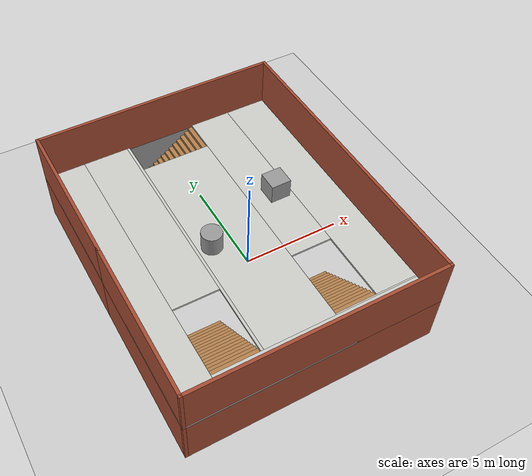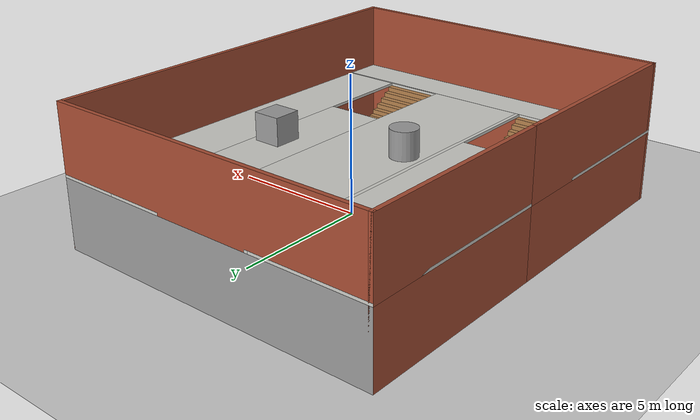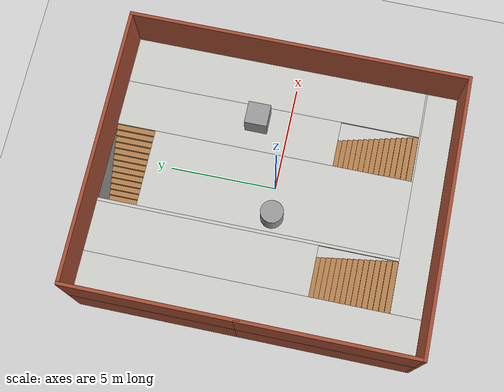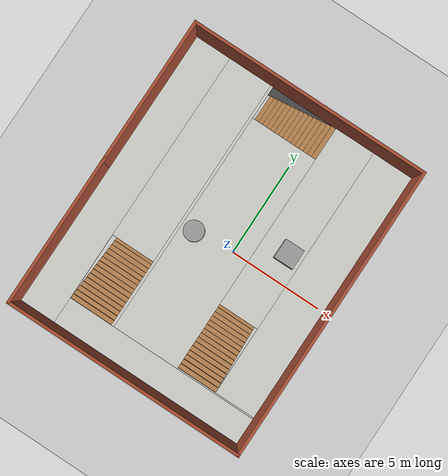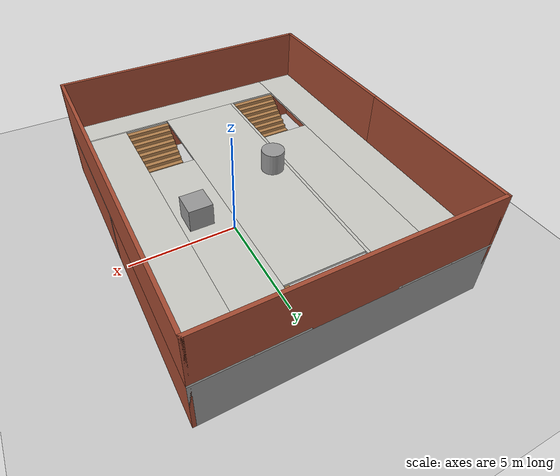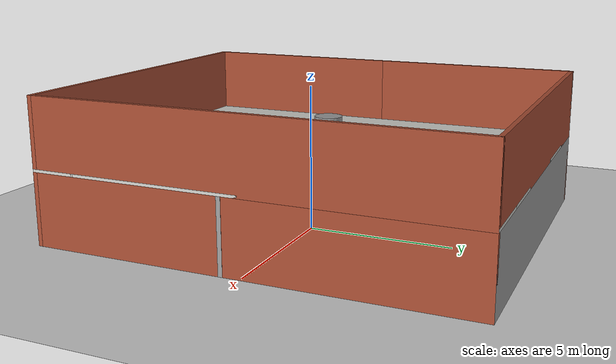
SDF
<sdf version="1.6">
 <world name="default">
  <light name="sun" type="directional">
   <pose>0 0 10 0 -0 0</pose>
   <diffuse>0.8 0.8 0.8 1</diffuse>
   <specular>0.1 0.1 0.1 1</specular>
   <attenuation>
    <range>1000</range>
    <constant>0.9</constant>
    <linear>0.01</linear>
    <quadratic>0.001</quadratic>
   </attenuation>
   <direction>-0.5 0.5 -1</direction>
  </light>
  <model name="ground_plane">
   <static>1</static>
   <link name="link">
    <collision name="collision">
     <geometry><plane><normal>0 0 1</normal><size>100 100</size></plane></geometry>
     <surface><friction><ode><mu>100</mu><mu2>50</mu2></ode></friction></surface>
    </collision>
    <visual name="visual">
     <cast_shadows>0</cast_shadows>
     <geometry><plane><normal>0 0 1</normal><size>100 100</size></plane></geometry>
     <material>
      <script><uri>file://media/materials/scripts/gazebo.material</uri><name>Gazebo/Grey</name></script>
     </material>
    </visual>
   </link>
  </model>
  <gravity>0 0 -9.8</gravity>
  <magnetic_field>6e-06 2.3e-05 -4.2e-05</magnetic_field>
  <atmosphere type="adiabatic"/>
  <physics name="default_physics" default="0" type="ode">
   <max_step_size>0.001</max_step_size>
   <real_time_factor>1</real_time_factor>
   <real_time_update_rate>1000</real_time_update_rate>
  </physics>
  <scene><ambient>0.4 0.4 0.4 1</ambient><background>0.7 0.7 0.7 1</background><shadows>1</shadows></scene>
  <spherical_coordinates>
   <surface_model>EARTH_WGS84</surface_model>
   <latitude_deg>0</latitude_deg>
   <longitude_deg>0</longitude_deg>
   <elevation>0</elevation>
   <heading_deg>0</heading_deg>
  </spherical_coordinates>
  <model name="testbuilding">
   <pose>-0.962401 0.044177 0 0 -0 0</pose>
   <link name="Floor_0">
    <pose>-0.002 0 2.5 0 -0 0</pose>
    <visual name="Floor_0_Visual_0">
     <pose>-5.13098 0 0.05 0 -0 0</pose>
     <geometry><box><size>1.98805 15 0.1</size></box></geometry>
     <material>
      <script><uri>file://media/materials/scripts/gazebo.material</uri><name>Gazebo/CeilingTiled</name></script>
      <ambient>1 1 1 1</ambient>
     </material>
    </visual>
    <collision name="Floor_0_Collision_0">
     <geometry><box><size>1.98805 15 0.1</size></box></geometry>
     <pose>-5.13098 0 0.05 0 -0 0</pose>
    </collision>
    <visual name="Floor_0_Visual_1">
     <pose>0.994023 -6.75064 0.05 0 -0 0</pose>
     <geometry><box><size>10.262 1.49873 0.1</size></box></geometry>
     <material>
      <script><uri>file://media/materials/scripts/gazebo.material</uri><name>Gazebo/CeilingTiled</name></script>
      <ambient>1 1 1 1</ambient>
     </material>
    </visual>
    <collision name="Floor_0_Collision_1">
     <geometry><box><size>10.262 1.49873 0.1</size></box></geometry>
     <pose>0.994023 -6.75064 0.05 0 -0 0</pose>
    </collision>
    <visual name="Floor_0_Visual_2">
     <pose>-1.79152 0.749363 0.05 0 -0 0</pose>
     <geometry><box><size>0.137255 13.5013 0.1</size></box></geometry>
     <material>
      <script><uri>file://media/materials/scripts/gazebo.material</uri><name>Gazebo/CeilingTiled</name></script>
      <ambient>1 1 1 1</ambient>
     </material>
    </visual>
    <collision name="Floor_0_Collision_2">
     <geometry><box><size>0.137255 13.5013 0.1</size></box></geometry>
     <pose>-1.79152 0.749363 0.05 0 -0 0</pose>
    </collision>
    <visual name="Floor_0_Visual_3">
     <pose>0.02909 -0.194424 0.05 0 -0 0</pose>
     <geometry><box><size>3.50396 11.6137 0.1</size></box></geometry>
     <material>
      <script><uri>file://media/materials/scripts/gazebo.material</uri><name>Gazebo/CeilingTiled</name></script>
      <ambient>1 1 1 1</ambient>
     </material>
    </visual>
    <collision name="Floor_0_Collision_3">
     <geometry><box><size>3.50396 11.6137 0.1</size></box></geometry>
     <pose>0.02909 -0.194424 0.05 0 -0 0</pose>
    </collision>
    <visual name="Floor_0_Visual_4">
     <pose>3.95303 -5.96752 0.05 0 -0 0</pose>
     <geometry><box><size>4.34393 0.067504 0.1</size></box></geometry>
     <material>
      <script><uri>file://media/materials/scripts/gazebo.material</uri><name>Gazebo/CeilingTiled</name></script>
      <ambient>1 1 1 1</ambient>
     </material>
    </visual>
    <collision name="Floor_0_Collision_4">
     <geometry><box><size>4.34393 0.067504 0.1</size></box></geometry>
     <pose>3.95303 -5.96752 0.05 0 -0 0</pose>
    </collision>
    <visual name="Floor_0_Visual_5">
     <pose>4.99834 0.783115 0.05 0 -0 0</pose>
     <geometry><box><size>2.25332 13.4338 0.1</size></box></geometry>
     <material>
      <script><uri>file://media/materials/scripts/gazebo.material</uri><name>Gazebo/CeilingTiled</name></script>
      <ambient>1 1 1 1</ambient>
     </material>
    </visual>
    <collision name="Floor_0_Collision_5">
     <geometry><box><size>2.25332 13.4338 0.1</size></box></geometry>
     <pose>4.99834 0.783115 0.05 0 -0 0</pose>
    </collision>
    <visual name="Floor_0_Visual_6">
     <pose>-2.99855 2.49936 0.05 0 -0 0</pose>
     <geometry><box><size>2.27681 10.0013 0.1</size></box></geometry>
     <material>
      <script><uri>file://media/materials/scripts/gazebo.material</uri><name>Gazebo/CeilingTiled</name></script>
      <ambient>1 1 1 1</ambient>
     </material>
    </visual>
    <collision name="Floor_0_Collision_6">
     <geometry><box><size>2.27681 10.0013 0.1</size></box></geometry>
     <pose>-2.99855 2.49936 0.05 0 -0 0</pose>
    </collision>
    <visual name="Floor_0_Visual_7">
     <pose>2.82637 2.53312 0.05 0 -0 0</pose>
     <geometry><box><size>2.09061 9.93377 0.1</size></box></geometry>
     <material>
      <script><uri>file://media/materials/scripts/gazebo.material</uri><name>Gazebo/CeilingTiled</name></script>
      <ambient>1 1 1 1</ambient>
     </material>
    </visual>
    <collision name="Floor_0_Collision_7">
     <geometry><box><size>2.09061 9.93377 0.1</size></box></geometry>
     <pose>2.82637 2.53312 0.05 0 -0 0</pose>
    </collision>
    <visual name="Floor_0_Visual_8">
     <pose>1.77909 6.55621 0.05 0 -0 0</pose>
     <geometry><box><size>0.003961 1.88757 0.1</size></box></geometry>
     <material>
      <script><uri>file://media/materials/scripts/gazebo.material</uri><name>Gazebo/CeilingTiled</name></script>
      <ambient>1 1 1 1</ambient>
     </material>
    </visual>
    <collision name="Floor_0_Collision_8">
     <geometry><box><size>0.003961 1.88757 0.1</size></box></geometry>
     <pose>1.77909 6.55621 0.05 0 -0 0</pose>
    </collision>
    <visual name="Floor_0_Visual_9">
     <pose>0.027109 7.48966 0.05 0 -0 0</pose>
     <geometry><box><size>3.5 0.020675 0.1</size></box></geometry>
     <material>
      <script><uri>file://media/materials/scripts/gazebo.material</uri><name>Gazebo/CeilingTiled</name></script>
      <ambient>1 1 1 1</ambient>
     </material>
    </visual>
    <collision name="Floor_0_Collision_9">
     <geometry><box><size>3.5 0.020675 0.1</size></box></geometry>
     <pose>0.027109 7.48966 0.05 0 -0 0</pose>
    </collision>
   </link>
   <link name="Stairs_0">
    <visual name="Stairs_0_Visual_0">
     <pose>-3.00055 -2.61794 0.083333 0 -0 0</pose>
     <geometry><box><size>2.27681 0.233333 0.166667</size></box></geometry>
     <material>
      <script><uri>file://media/materials/scripts/gazebo.material</uri><name>Gazebo/Wood</name></script>
      <ambient>1 1 1 1</ambient>
     </material>
    </visual>
    <collision name="Stairs_0_Collision_0">
     <geometry><box><size>2.27681 0.233333 0.166667</size></box></geometry>
     <pose>-3.00055 -2.61794 0.083333 0 -0 0</pose>
    </collision>
    <visual name="Stairs_0_Visual_1">
     <pose>-3.00055 -2.85127 0.25 0 -0 0</pose>
     <geometry><box><size>2.27681 0.233333 0.166667</size></box></geometry>
     <material>
      <script><uri>file://media/materials/scripts/gazebo.material</uri><name>Gazebo/Wood</name></script>
      <ambient>1 1 1 1</ambient>
     </material>
    </visual>
    <collision name="Stairs_0_Collision_1">
     <geometry><box><size>2.27681 0.233333 0.166667</size></box></geometry>
     <pose>-3.00055 -2.85127 0.25 0 -0 0</pose>
    </collision>
    <visual name="Stairs_0_Visual_2">
     <pose>-3.00055 -3.08461 0.416667 0 -0 0</pose>
     <geometry><box><size>2.27681 0.233333 0.166667</size></box></geometry>
     <material>
      <script><uri>file://media/materials/scripts/gazebo.material</uri><name>Gazebo/Wood</name></script>
      <ambient>1 1 1 1</ambient>
     </material>
    </visual>
    <collision name="Stairs_0_Collision_2">
     <geometry><box><size>2.27681 0.233333 0.166667</size></box></geometry>
     <pose>-3.00055 -3.08461 0.416667 0 -0 0</pose>
    </collision>
    <visual name="Stairs_0_Visual_3">
     <pose>-3.00055 -3.31794 0.583333 0 -0 0</pose>
     <geometry><box><size>2.27681 0.233333 0.166667</size></box></geometry>
     <material>
      <script><uri>file://media/materials/scripts/gazebo.material</uri><name>Gazebo/Wood</name></script>
      <ambient>1 1 1 1</ambient>
     </material>
    </visual>
    <collision name="Stairs_0_Collision_3">
     <geometry><box><size>2.27681 0.233333 0.166667</size></box></geometry>
     <pose>-3.00055 -3.31794 0.583333 0 -0 0</pose>
    </collision>
    <visual name="Stairs_0_Visual_4">
     <pose>-3.00055 -3.55127 0.75 0 -0 0</pose>
     <geometry><box><size>2.27681 0.233333 0.166667</size></box></geometry>
     <material>
      <script><uri>file://media/materials/scripts/gazebo.material</uri><name>Gazebo/Wood</name></script>
      <ambient>1 1 1 1</ambient>
     </material>
    </visual>
    <collision name="Stairs_0_Collision_4">
     <geometry><box><size>2.27681 0.233333 0.166667</size></box></geometry>
     <pose>-3.00055 -3.55127 0.75 0 -0 0</pose>
    </collision>
    <visual name="Stairs_0_Visual_5">
     <pose>-3.00055 -3.78461 0.916667 0 -0 0</pose>
     <geometry><box><size>2.27681 0.233333 0.166667</size></box></geometry>
     <material>
      <script><uri>file://media/materials/scripts/gazebo.material</uri><name>Gazebo/Wood</name></script>
      <ambient>1 1 1 1</ambient>
     </material>
    </visual>
    <collision name="Stairs_0_Collision_5">
     <geometry><box><size>2.27681 0.233333 0.166667</size></box></geometry>
     <pose>-3.00055 -3.78461 0.916667 0 -0 0</pose>
    </collision>
    <visual name="Stairs_0_Visual_6">
     <pose>-3.00055 -4.01794 1.08333 0 -0 0</pose>
     <geometry><box><size>2.27681 0.233333 0.166667</size></box></geometry>
     <material>
      <script><uri>file://media/materials/scripts/gazebo.material</uri><name>Gazebo/Wood</name></script>
      <ambient>1 1 1 1</ambient>
     </material>
    </visual>
    <collision name="Stairs_0_Collision_6">
     <geometry><box><size>2.27681 0.233333 0.166667</size></box></geometry>
     <pose>-3.00055 -4.01794 1.08333 0 -0 0</pose>
    </collision>
    <visual name="Stairs_0_Visual_7">
     <pose>-3.00055 -4.25127 1.25 0 -0 0</pose>
     <geometry><box><size>2.27681 0.233333 0.166667</size></box></geometry>
     <material>
      <script><uri>file://media/materials/scripts/gazebo.material</uri><name>Gazebo/Wood</name></script>
      <ambient>1 1 1 1</ambient>
     </material>
    </visual>
    <collision name="Stairs_0_Collision_7">
     <geometry><box><size>2.27681 0.233333 0.166667</size></box></geometry>
     <pose>-3.00055 -4.25127 1.25 0 -0 0</pose>
    </collision>
    <visual name="Stairs_0_Visual_8">
     <pose>-3.00055 -4.48461 1.41667 0 -0 0</pose>
     <geometry><box><size>2.27681 0.233333 0.166667</size></box></geometry>
     <material>
      <script><uri>file://media/materials/scripts/gazebo.material</uri><name>Gazebo/Wood</name></script>
      <ambient>1 1 1 1</ambient>
     </material>
    </visual>
    <collision name="Stairs_0_Collision_8">
     <geometry><box><size>2.27681 0.233333 0.166667</size></box></geometry>
     <pose>-3.00055 -4.48461 1.41667 0 -0 0</pose>
    </collision>
    <visual name="Stairs_0_Visual_9">
     <pose>-3.00055 -4.71794 1.58333 0 -0 0</pose>
     <geometry><box><size>2.27681 0.233333 0.166667</size></box></geometry>
     <material>
      <script><uri>file://media/materials/scripts/gazebo.material</uri><name>Gazebo/Wood</name></script>
      <ambient>1 1 1 1</ambient>
     </material>
    </visual>
    <collision name="Stairs_0_Collision_9">
     <geometry><box><size>2.27681 0.233333 0.166667</size></box></geometry>
     <pose>-3.00055 -4.71794 1.58333 0 -0 0</pose>
    </collision>
    <visual name="Stairs_0_Visual_10">
     <pose>-3.00055 -4.95127 1.75 0 -0 0</pose>
     <geometry><box><size>2.27681 0.233333 0.166667</size></box></geometry>
     <material>
      <script><uri>file://media/materials/scripts/gazebo.material</uri><name>Gazebo/Wood</name></script>
      <ambient>1 1 1 1</ambient>
     </material>
    </visual>
    <collision name="Stairs_0_Collision_10">
     <geometry><box><size>2.27681 0.233333 0.166667</size></box></geometry>
     <pose>-3.00055 -4.95127 1.75 0 -0 0</pose>
    </collision>
    <visual name="Stairs_0_Visual_11">
     <pose>-3.00055 -5.18461 1.91667 0 -0 0</pose>
     <geometry><box><size>2.27681 0.233333 0.166667</size></box></geometry>
     <material>
      <script><uri>file://media/materials/scripts/gazebo.material</uri><name>Gazebo/Wood</name></script>
      <ambient>1 1 1 1</ambient>
     </material>
    </visual>
    <collision name="Stairs_0_Collision_11">
     <geometry><box><size>2.27681 0.233333 0.166667</size></box></geometry>
     <pose>-3.00055 -5.18461 1.91667 0 -0 0</pose>
    </collision>
    <visual name="Stairs_0_Visual_12">
     <pose>-3.00055 -5.41794 2.08333 0 -0 0</pose>
     <geometry><box><size>2.27681 0.233333 0.166667</size></box></geometry>
     <material>
      <script><uri>file://media/materials/scripts/gazebo.material</uri><name>Gazebo/Wood</name></script>
      <ambient>1 1 1 1</ambient>
     </material>
    </visual>
    <collision name="Stairs_0_Collision_12">
     <geometry><box><size>2.27681 0.233333 0.166667</size></box></geometry>
     <pose>-3.00055 -5.41794 2.08333 0 -0 0</pose>
    </collision>
    <visual name="Stairs_0_Visual_13">
     <pose>-3.00055 -5.65127 2.25 0 -0 0</pose>
     <geometry><box><size>2.27681 0.233333 0.166667</size></box></geometry>
     <material>
      <script><uri>file://media/materials/scripts/gazebo.material</uri><name>Gazebo/Wood</name></script>
      <ambient>1 1 1 1</ambient>
     </material>
    </visual>
    <collision name="Stairs_0_Collision_13">
     <geometry><box><size>2.27681 0.233333 0.166667</size></box></geometry>
     <pose>-3.00055 -5.65127 2.25 0 -0 0</pose>
    </collision>
    <visual name="Stairs_0_Visual_14">
     <pose>-3.00055 -5.88461 2.41667 0 -0 0</pose>
     <geometry><box><size>2.27681 0.233333 0.166667</size></box></geometry>
     <material>
      <script><uri>file://media/materials/scripts/gazebo.material</uri><name>Gazebo/Wood</name></script>
      <ambient>1 1 1 1</ambient>
     </material>
    </visual>
    <collision name="Stairs_0_Collision_14">
     <geometry><box><size>2.27681 0.233333 0.166667</size></box></geometry>
     <pose>-3.00055 -5.88461 2.41667 0 -0 0</pose>
    </collision>
   </link>
   <link name="Stairs_1">
    <visual name="Stairs_1_Visual_0">
     <pose>2.82437 -2.55044 0.083333 0 -0 0</pose>
     <geometry><box><size>2.09061 0.233333 0.166667</size></box></geometry>
     <material>
      <script><uri>file://media/materials/scripts/gazebo.material</uri><name>Gazebo/Wood</name></script>
      <ambient>1 1 1 1</ambient>
     </material>
    </visual>
    <collision name="Stairs_1_Collision_0">
     <geometry><box><size>2.09061 0.233333 0.166667</size></box></geometry>
     <pose>2.82437 -2.55044 0.083333 0 -0 0</pose>
    </collision>
    <visual name="Stairs_1_Visual_1">
     <pose>2.82437 -2.78377 0.25 0 -0 0</pose>
     <geometry><box><size>2.09061 0.233333 0.166667</size></box></geometry>
     <material>
      <script><uri>file://media/materials/scripts/gazebo.material</uri><name>Gazebo/Wood</name></script>
      <ambient>1 1 1 1</ambient>
     </material>
    </visual>
    <collision name="Stairs_1_Collision_1">
     <geometry><box><size>2.09061 0.233333 0.166667</size></box></geometry>
     <pose>2.82437 -2.78377 0.25 0 -0 0</pose>
    </collision>
    <visual name="Stairs_1_Visual_2">
     <pose>2.82437 -3.0171 0.416667 0 -0 0</pose>
     <geometry><box><size>2.09061 0.233333 0.166667</size></box></geometry>
     <material>
      <script><uri>file://media/materials/scripts/gazebo.material</uri><name>Gazebo/Wood</name></script>
      <ambient>1 1 1 1</ambient>
     </material>
    </visual>
    <collision name="Stairs_1_Collision_2">
     <geometry><box><size>2.09061 0.233333 0.166667</size></box></geometry>
     <pose>2.82437 -3.0171 0.416667 0 -0 0</pose>
    </collision>
    <visual name="Stairs_1_Visual_3">
     <pose>2.82437 -3.25044 0.583333 0 -0 0</pose>
     <geometry><box><size>2.09061 0.233333 0.166667</size></box></geometry>
     <material>
      <script><uri>file://media/materials/scripts/gazebo.material</uri><name>Gazebo/Wood</name></script>
      <ambient>1 1 1 1</ambient>
     </material>
    </visual>
    <collision name="Stairs_1_Collision_3">
     <geometry><box><size>2.09061 0.233333 0.166667</size></box></geometry>
     <pose>2.82437 -3.25044 0.583333 0 -0 0</pose>
    </collision>
    <visual name="Stairs_1_Visual_4">
     <pose>2.82437 -3.48377 0.75 0 -0 0</pose>
     <geometry><box><size>2.09061 0.233333 0.166667</size></box></geometry>
     <material>
      <script><uri>file://media/materials/scripts/gazebo.material</uri><name>Gazebo/Wood</name></script>
      <ambient>1 1 1 1</ambient>
     </material>
    </visual>
    <collision name="Stairs_1_Collision_4">
     <geometry><box><size>2.09061 0.233333 0.166667</size></box></geometry>
     <pose>2.82437 -3.48377 0.75 0 -0 0</pose>
    </collision>
    <visual name="Stairs_1_Visual_5">
     <pose>2.82437 -3.7171 0.916667 0 -0 0</pose>
     <geometry><box><size>2.09061 0.233333 0.166667</size></box></geometry>
     <material>
      <script><uri>file://media/materials/scripts/gazebo.material</uri><name>Gazebo/Wood</name></script>
      <ambient>1 1 1 1</ambient>
     </material>
    </visual>
    <collision name="Stairs_1_Collision_5">
     <geometry><box><size>2.09061 0.233333 0.166667</size></box></geometry>
     <pose>2.82437 -3.7171 0.916667 0 -0 0</pose>
    </collision>
    <visual name="Stairs_1_Visual_6">
     <pose>2.82437 -3.95044 1.08333 0 -0 0</pose>
     <geometry><box><size>2.09061 0.233333 0.166667</size></box></geometry>
     <material>
      <script><uri>file://media/materials/scripts/gazebo.material</uri><name>Gazebo/Wood</name></script>
      <ambient>1 1 1 1</ambient>
     </material>
    </visual>
    <collision name="Stairs_1_Collision_6">
     <geometry><box><size>2.09061 0.233333 0.166667</size></box></geometry>
     <pose>2.82437 -3.95044 1.08333 0 -0 0</pose>
    </collision>
    <visual name="Stairs_1_Visual_7">
     <pose>2.82437 -4.18377 1.25 0 -0 0</pose>
     <geometry><box><size>2.09061 0.233333 0.166667</size></box></geometry>
     <material>
      <script><uri>file://media/materials/scripts/gazebo.material</uri><name>Gazebo/Wood</name></script>
      <ambient>1 1 1 1</ambient>
     </material>
    </visual>
    <collision name="Stairs_1_Collision_7">
     <geometry><box><size>2.09061 0.233333 0.166667</size></box></geometry>
     <pose>2.82437 -4.18377 1.25 0 -0 0</pose>
    </collision>
    <visual name="Stairs_1_Visual_8">
     <pose>2.82437 -4.4171 1.41667 0 -0 0</pose>
     <geometry><box><size>2.09061 0.233333 0.166667</size></box></geometry>
     <material>
      <script><uri>file://media/materials/scripts/gazebo.material</uri><name>Gazebo/Wood</name></script>
      <ambient>1 1 1 1</ambient>
     </material>
    </visual>
    <collision name="Stairs_1_Collision_8">
     <geometry><box><size>2.09061 0.233333 0.166667</size></box></geometry>
     <pose>2.82437 -4.4171 1.41667 0 -0 0</pose>
    </collision>
    <visual name="Stairs_1_Visual_9">
     <pose>2.82437 -4.65044 1.58333 0 -0 0</pose>
     <geometry><box><size>2.09061 0.233333 0.166667</size></box></geometry>
     <material>
      <script><uri>file://media/materials/scripts/gazebo.material</uri><name>Gazebo/Wood</name></script>
      <ambient>1 1 1 1</ambient>
     </material>
    </visual>
    <collision name="Stairs_1_Collision_9">
     <geometry><box><size>2.09061 0.233333 0.166667</size></box></geometry>
     <pose>2.82437 -4.65044 1.58333 0 -0 0</pose>
    </collision>
    <visual name="Stairs_1_Visual_10">
     <pose>2.82437 -4.88377 1.75 0 -0 0</pose>
     <geometry><box><size>2.09061 0.233333 0.166667</size></box></geometry>
     <material>
      <script><uri>file://media/materials/scripts/gazebo.material</uri><name>Gazebo/Wood</name></script>
      <ambient>1 1 1 1</ambient>
     </material>
    </visual>
    <collision name="Stairs_1_Collision_10">
     <geometry><box><size>2.09061 0.233333 0.166667</size></box></geometry>
     <pose>2.82437 -4.88377 1.75 0 -0 0</pose>
    </collision>
    <visual name="Stairs_1_Visual_11">
     <pose>2.82437 -5.1171 1.91667 0 -0 0</pose>
     <geometry><box><size>2.09061 0.233333 0.166667</size></box></geometry>
     <material>
      <script><uri>file://media/materials/scripts/gazebo.material</uri><name>Gazebo/Wood</name></script>
      <ambient>1 1 1 1</ambient>
     </material>
    </visual>
    <collision name="Stairs_1_Collision_11">
     <geometry><box><size>2.09061 0.233333 0.166667</size></box></geometry>
     <pose>2.82437 -5.1171 1.91667 0 -0 0</pose>
    </collision>
    <visual name="Stairs_1_Visual_12">
     <pose>2.82437 -5.35044 2.08333 0 -0 0</pose>
     <geometry><box><size>2.09061 0.233333 0.166667</size></box></geometry>
     <material>
      <script><uri>file://media/materials/scripts/gazebo.material</uri><name>Gazebo/Wood</name></script>
      <ambient>1 1 1 1</ambient>
     </material>
    </visual>
    <collision name="Stairs_1_Collision_12">
     <geometry><box><size>2.09061 0.233333 0.166667</size></box></geometry>
     <pose>2.82437 -5.35044 2.08333 0 -0 0</pose>
    </collision>
    <visual name="Stairs_1_Visual_13">
     <pose>2.82437 -5.58377 2.25 0 -0 0</pose>
     <geometry><box><size>2.09061 0.233333 0.166667</size></box></geometry>
     <material>
      <script><uri>file://media/materials/scripts/gazebo.material</uri><name>Gazebo/Wood</name></script>
      <ambient>1 1 1 1</ambient>
     </material>
    </visual>
    <collision name="Stairs_1_Collision_13">
     <geometry><box><size>2.09061 0.233333 0.166667</size></box></geometry>
     <pose>2.82437 -5.58377 2.25 0 -0 0</pose>
    </collision>
    <visual name="Stairs_1_Visual_14">
     <pose>2.82437 -5.8171 2.41667 0 -0 0</pose>
     <geometry><box><size>2.09061 0.233333 0.166667</size></box></geometry>
     <material>
      <script><uri>file://media/materials/scripts/gazebo.material</uri><name>Gazebo/Wood</name></script>
      <ambient>1 1 1 1</ambient>
     </material>
    </visual>
    <collision name="Stairs_1_Collision_14">
     <geometry><box><size>2.09061 0.233333 0.166667</size></box></geometry>
     <pose>2.82437 -5.8171 2.41667 0 -0 0</pose>
    </collision>
   </link>
   <link name="Stairs_2">
    <visual name="Stairs_2_Visual_0">
     <pose>-1.60822 6.54588 0.083333 0 -0 1.5708</pose>
     <geometry><box><size>1.8669 0.233333 0.166667</size></box></geometry>
     <material>
      <script><uri>file://media/materials/scripts/gazebo.material</uri><name>Gazebo/Wood</name></script>
      <ambient>1 1 1 1</ambient>
     </material>
    </visual>
    <collision name="Stairs_2_Collision_0">
     <geometry><box><size>1.8669 0.233333 0.166667</size></box></geometry>
     <pose>-1.60822 6.54588 0.083333 0 -0 1.5708</pose>
    </collision>
    <visual name="Stairs_2_Visual_1">
     <pose>-1.37489 6.54588 0.25 0 -0 1.5708</pose>
     <geometry><box><size>1.8669 0.233333 0.166667</size></box></geometry>
     <material>
      <script><uri>file://media/materials/scripts/gazebo.material</uri><name>Gazebo/Wood</name></script>
      <ambient>1 1 1 1</ambient>
     </material>
    </visual>
    <collision name="Stairs_2_Collision_1">
     <geometry><box><size>1.8669 0.233333 0.166667</size></box></geometry>
     <pose>-1.37489 6.54588 0.25 0 -0 1.5708</pose>
    </collision>
    <visual name="Stairs_2_Visual_2">
     <pose>-1.14156 6.54588 0.416667 0 -0 1.5708</pose>
     <geometry><box><size>1.8669 0.233333 0.166667</size></box></geometry>
     <material>
      <script><uri>file://media/materials/scripts/gazebo.material</uri><name>Gazebo/Wood</name></script>
      <ambient>1 1 1 1</ambient>
     </material>
    </visual>
    <collision name="Stairs_2_Collision_2">
     <geometry><box><size>1.8669 0.233333 0.166667</size></box></geometry>
     <pose>-1.14156 6.54588 0.416667 0 -0 1.5708</pose>
    </collision>
    <visual name="Stairs_2_Visual_3">
     <pose>-0.908224 6.54588 0.583333 0 -0 1.5708</pose>
     <geometry><box><size>1.8669 0.233333 0.166667</size></box></geometry>
     <material>
      <script><uri>file://media/materials/scripts/gazebo.material</uri><name>Gazebo/Wood</name></script>
      <ambient>1 1 1 1</ambient>
     </material>
    </visual>
    <collision name="Stairs_2_Collision_3">
     <geometry><box><size>1.8669 0.233333 0.166667</size></box></geometry>
     <pose>-0.908224 6.54588 0.583333 0 -0 1.5708</pose>
    </collision>
    <visual name="Stairs_2_Visual_4">
     <pose>-0.67489 6.54588 0.75 0 -0 1.5708</pose>
     <geometry><box><size>1.8669 0.233333 0.166667</size></box></geometry>
     <material>
      <script><uri>file://media/materials/scripts/gazebo.material</uri><name>Gazebo/Wood</name></script>
      <ambient>1 1 1 1</ambient>
     </material>
    </visual>
    <collision name="Stairs_2_Collision_4">
     <geometry><box><size>1.8669 0.233333 0.166667</size></box></geometry>
     <pose>-0.67489 6.54588 0.75 0 -0 1.5708</pose>
    </collision>
    <visual name="Stairs_2_Visual_5">
     <pose>-0.441557 6.54588 0.916667 0 -0 1.5708</pose>
     <geometry><box><size>1.8669 0.233333 0.166667</size></box></geometry>
     <material>
      <script><uri>file://media/materials/scripts/gazebo.material</uri><name>Gazebo/Wood</name></script>
      <ambient>1 1 1 1</ambient>
     </material>
    </visual>
    <collision name="Stairs_2_Collision_5">
     <geometry><box><size>1.8669 0.233333 0.166667</size></box></geometry>
     <pose>-0.441557 6.54588 0.916667 0 -0 1.5708</pose>
    </collision>
    <visual name="Stairs_2_Visual_6">
     <pose>-0.208224 6.54588 1.08333 0 -0 1.5708</pose>
     <geometry><box><size>1.8669 0.233333 0.166667</size></box></geometry>
     <material>
      <script><uri>file://media/materials/scripts/gazebo.material</uri><name>Gazebo/Wood</name></script>
      <ambient>1 1 1 1</ambient>
     </material>
    </visual>
    <collision name="Stairs_2_Collision_6">
     <geometry><box><size>1.8669 0.233333 0.166667</size></box></geometry>
     <pose>-0.208224 6.54588 1.08333 0 -0 1.5708</pose>
    </collision>
    <visual name="Stairs_2_Visual_7">
     <pose>0.02511 6.54588 1.25 0 -0 1.5708</pose>
     <geometry><box><size>1.8669 0.233333 0.166667</size></box></geometry>
     <material>
      <script><uri>file://media/materials/scripts/gazebo.material</uri><name>Gazebo/Wood</name></script>
      <ambient>1 1 1 1</ambient>
     </material>
    </visual>
    <collision name="Stairs_2_Collision_7">
     <geometry><box><size>1.8669 0.233333 0.166667</size></box></geometry>
     <pose>0.02511 6.54588 1.25 0 -0 1.5708</pose>
    </collision>
    <visual name="Stairs_2_Visual_8">
     <pose>0.258443 6.54588 1.41667 0 -0 1.5708</pose>
     <geometry><box><size>1.8669 0.233333 0.166667</size></box></geometry>
     <material>
      <script><uri>file://media/materials/scripts/gazebo.material</uri><name>Gazebo/Wood</name></script>
      <ambient>1 1 1 1</ambient>
     </material>
    </visual>
    <collision name="Stairs_2_Collision_8">
     <geometry><box><size>1.8669 0.233333 0.166667</size></box></geometry>
     <pose>0.258443 6.54588 1.41667 0 -0 1.5708</pose>
    </collision>
    <visual name="Stairs_2_Visual_9">
     <pose>0.491777 6.54588 1.58333 0 -0 1.5708</pose>
     <geometry><box><size>1.8669 0.233333 0.166667</size></box></geometry>
     <material>
      <script><uri>file://media/materials/scripts/gazebo.material</uri><name>Gazebo/Wood</name></script>
      <ambient>1 1 1 1</ambient>
     </material>
    </visual>
    <collision name="Stairs_2_Collision_9">
     <geometry><box><size>1.8669 0.233333 0.166667</size></box></geometry>
     <pose>0.491777 6.54588 1.58333 0 -0 1.5708</pose>
    </collision>
    <visual name="Stairs_2_Visual_10">
     <pose>0.72511 6.54588 1.75 0 -0 1.5708</pose>
     <geometry><box><size>1.8669 0.233333 0.166667</size></box></geometry>
     <material>
      <script><uri>file://media/materials/scripts/gazebo.material</uri><name>Gazebo/Wood</name></script>
      <ambient>1 1 1 1</ambient>
     </material>
    </visual>
    <collision name="Stairs_2_Collision_10">
     <geometry><box><size>1.8669 0.233333 0.166667</size></box></geometry>
     <pose>0.72511 6.54588 1.75 0 -0 1.5708</pose>
    </collision>
    <visual name="Stairs_2_Visual_11">
     <pose>0.958443 6.54588 1.91667 0 -0 1.5708</pose>
     <geometry><box><size>1.8669 0.233333 0.166667</size></box></geometry>
     <material>
      <script><uri>file://media/materials/scripts/gazebo.material</uri><name>Gazebo/Wood</name></script>
      <ambient>1 1 1 1</ambient>
     </material>
    </visual>
    <collision name="Stairs_2_Collision_11">
     <geometry><box><size>1.8669 0.233333 0.166667</size></box></geometry>
     <pose>0.958443 6.54588 1.91667 0 -0 1.5708</pose>
    </collision>
    <visual name="Stairs_2_Visual_12">
     <pose>1.19178 6.54588 2.08333 0 -0 1.5708</pose>
     <geometry><box><size>1.8669 0.233333 0.166667</size></box></geometry>
     <material>
      <script><uri>file://media/materials/scripts/gazebo.material</uri><name>Gazebo/Wood</name></script>
      <ambient>1 1 1 1</ambient>
     </material>
    </visual>
    <collision name="Stairs_2_Collision_12">
     <geometry><box><size>1.8669 0.233333 0.166667</size></box></geometry>
     <pose>1.19178 6.54588 2.08333 0 -0 1.5708</pose>
    </collision>
    <visual name="Stairs_2_Visual_13">
     <pose>1.42511 6.54588 2.25 0 -0 1.5708</pose>
     <geometry><box><size>1.8669 0.233333 0.166667</size></box></geometry>
     <material>
      <script><uri>file://media/materials/scripts/gazebo.material</uri><name>Gazebo/Wood</name></script>
      <ambient>1 1 1 1</ambient>
     </material>
    </visual>
    <collision name="Stairs_2_Collision_13">
     <geometry><box><size>1.8669 0.233333 0.166667</size></box></geometry>
     <pose>1.42511 6.54588 2.25 0 -0 1.5708</pose>
    </collision>
    <visual name="Stairs_2_Visual_14">
     <pose>1.65844 6.54588 2.41667 0 -0 1.5708</pose>
     <geometry><box><size>1.8669 0.233333 0.166667</size></box></geometry>
     <material>
      <script><uri>file://media/materials/scripts/gazebo.material</uri><name>Gazebo/Wood</name></script>
      <ambient>1 1 1 1</ambient>
     </material>
    </visual>
    <collision name="Stairs_2_Collision_14">
     <geometry><box><size>1.8669 0.233333 0.166667</size></box></geometry>
     <pose>1.65844 6.54588 2.41667 0 -0 1.5708</pose>
    </collision>
   </link>
   <link name="Wall_11">
    <collision name="Wall_11_Collision">
     <geometry><box><size>12.25 0.15 2.5</size></box></geometry>
     <pose>0 0 1.25 0 -0 0</pose>
    </collision>
    <visual name="Wall_11_Visual">
     <pose>0 0 1.25 0 -0 0</pose>
     <geometry><box><size>12.25 0.15 2.5</size></box></geometry>
     <material>
      <script><uri>file://media/materials/scripts/gazebo.material</uri><name>Gazebo/Grey</name></script>
      <ambient>1 1 1 1</ambient>
     </material>
    </visual>
    <pose>0.002 -0.683892 0 0 -0 0</pose>
   </link>
   <link name="Wall_13">
    <collision name="Wall_13_Collision">
     <geometry><box><size>7.5 0.15 2.5</size></box></geometry>
     <pose>0 0 1.25 0 -0 0</pose>
    </collision>
    <visual name="Wall_13_Visual">
     <pose>0 0 1.25 0 -0 0</pose>
     <geometry><box><size>7.5 0.15 2.5</size></box></geometry>
     <material>
      <script><uri>file://media/materials/scripts/gazebo.material</uri><name>Gazebo/Bricks</name></script>
      <ambient>1 1 1 1</ambient>
     </material>
    </visual>
    <pose>-6.052 3.75 2.5 0 -0 1.5708</pose>
   </link>
   <link name="Wall_14">
    <collision name="Wall_14_Collision">
     <geometry><box><size>12.25 0.15 2.5</size></box></geometry>
     <pose>0 0 1.25 0 -0 0</pose>
    </collision>
    <visual name="Wall_14_Visual">
     <pose>0 0 1.25 0 -0 0</pose>
     <geometry><box><size>12.25 0.15 2.5</size></box></geometry>
     <material>
      <script><uri>file://media/materials/scripts/gazebo.material</uri><name>Gazebo/Bricks</name></script>
      <ambient>1 1 1 1</ambient>
     </material>
    </visual>
    <pose>-0.002 7.425 2.5 0 -0 0</pose>
   </link>
   <link name="Wall_15">
    <collision name="Wall_15_Collision">
     <geometry><box><size>15 0.15 2.5</size></box></geometry>
     <pose>0 0 1.25 0 -0 0</pose>
    </collision>
    <visual name="Wall_15_Visual">
     <pose>0 0 1.25 0 -0 0</pose>
     <geometry><box><size>15 0.15 2.5</size></box></geometry>
     <material>
      <script><uri>file://media/materials/scripts/gazebo.material</uri><name>Gazebo/Bricks</name></script>
      <ambient>1 1 1 1</ambient>
     </material>
    </visual>
    <pose>6.048 0 2.5 0 0 -1.5708</pose>
   </link>
   <link name="Wall_16">
    <collision name="Wall_16_Collision">
     <geometry><box><size>12.25 0.15 2.5</size></box></geometry>
     <pose>0 0 1.25 0 -0 0</pose>
    </collision>
    <visual name="Wall_16_Visual">
     <pose>0 0 1.25 0 -0 0</pose>
     <geometry><box><size>12.25 0.15 2.5</size></box></geometry>
     <material>
      <script><uri>file://media/materials/scripts/gazebo.material</uri><name>Gazebo/Bricks</name></script>
      <ambient>1 1 1 1</ambient>
     </material>
    </visual>
    <pose>-0.002 -7.425 2.5 0 -0 3.14159</pose>
   </link>
   <link name="Wall_17">
    <collision name="Wall_17_Collision">
     <geometry><box><size>7.75 0.15 2.5</size></box></geometry>
     <pose>0 0 1.25 0 -0 0</pose>
    </collision>
    <visual name="Wall_17_Visual">
     <pose>0 0 1.25 0 -0 0</pose>
     <geometry><box><size>7.75 0.15 2.5</size></box></geometry>
     <material>
      <script><uri>file://media/materials/scripts/gazebo.material</uri><name>Gazebo/Bricks</name></script>
      <ambient>1 1 1 1</ambient>
     </material>
    </visual>
    <pose>-6.052 -3.625 2.5 0 -0 1.5708</pose>
   </link>
   <link name="Wall_5">
    <collision name="Wall_5_Collision">
     <geometry><box><size>7.5 0.15 2.5</size></box></geometry>
     <pose>0 0 1.25 0 -0 0</pose>
    </collision>
    <visual name="Wall_5_Visual">
     <pose>0 0 1.25 0 -0 0</pose>
     <geometry><box><size>7.5 0.15 2.5</size></box></geometry>
     <material>
      <script><uri>file://media/materials/scripts/gazebo.material</uri><name>Gazebo/Bricks</name></script>
      <ambient>1 1 1 1</ambient>
     </material>
    </visual>
    <pose>-6.052 3.75 0 0 -0 1.5708</pose>
   </link>
   <link name="Wall_6">
    <collision name="Wall_6_Collision">
     <geometry><box><size>12.25 0.15 2.5</size></box></geometry>
     <pose>0 0 1.25 0 -0 0</pose>
    </collision>
    <visual name="Wall_6_Visual">
     <pose>0 0 1.25 0 -0 0</pose>
     <geometry><box><size>12.25 0.15 2.5</size></box></geometry>
     <material>
      <script><uri>file://media/materials/scripts/gazebo.material</uri><name>Gazebo/Grey</name></script>
      <ambient>1 1 1 1</ambient>
     </material>
    </visual>
    <pose>-0.002 7.425 0 0 -0 0</pose>
   </link>
   <link name="Wall_7">
    <collision name="Wall_7_Collision">
     <geometry><box><size>15 0.15 2.5</size></box></geometry>
     <pose>0 0 1.25 0 -0 0</pose>
    </collision>
    <visual name="Wall_7_Visual">
     <pose>0 0 1.25 0 -0 0</pose>
     <geometry><box><size>15 0.15 2.5</size></box></geometry>
     <material>
      <script><uri>file://media/materials/scripts/gazebo.material</uri><name>Gazebo/Bricks</name></script>
      <ambient>1 1 1 1</ambient>
     </material>
    </visual>
    <pose>6.048 0 0 0 0 -1.5708</pose>
   </link>
   <link name="Wall_8">
    <collision name="Wall_8_Collision">
     <geometry><box><size>12.25 0.15 2.5</size></box></geometry>
     <pose>0 0 1.25 0 -0 0</pose>
    </collision>
    <visual name="Wall_8_Visual">
     <pose>0 0 1.25 0 -0 0</pose>
     <geometry><box><size>12.25 0.15 2.5</size></box></geometry>
     <material>
      <script><uri>file://media/materials/scripts/gazebo.material</uri><name>Gazebo/Bricks</name></script>
      <ambient>1 1 1 1</ambient>
     </material>
    </visual>
    <pose>-0.002 -7.425 0 0 -0 3.14159</pose>
   </link>
   <link name="Wall_9">
    <collision name="Wall_9_Collision">
     <geometry><box><size>7.75 0.15 2.5</size></box></geometry>
     <pose>0 0 1.25 0 -0 0</pose>
    </collision>
    <visual name="Wall_9_Visual">
     <pose>0 0 1.25 0 -0 0</pose>
     <geometry><box><size>7.75 0.15 2.5</size></box></geometry>
     <material>
      <script><uri>file://media/materials/scripts/gazebo.material</uri><name>Gazebo/Bricks</name></script>
      <ambient>1 1 1 1</ambient>
     </material>
    </visual>
    <pose>-6.052 -3.625 0 0 -0 1.5708</pose>
   </link>
   <static>1</static>
  </model>
  <model name="unit_box_0">
   <pose>2.17209 1.27319 3.1 -4e-06 -0 -4.5e-05</pose>
   <link name="link">
    <inertial>
     <mass>1</mass>
     <inertia>
      <ixx>0.166667</ixx>
      <ixy>0</ixy>
      <ixz>0</ixz>
      <iyy>0.166667</iyy>
      <iyz>0</iyz>
      <izz>0.166667</izz>
     </inertia>
    </inertial>
    <collision name="collision"><geometry><box><size>1 1 1</size></box></geometry></collision>
    <visual name="visual">
     <geometry><box><size>1 1 1</size></box></geometry>
     <material>
      <script><name>Gazebo/Grey</name><uri>file://media/materials/scripts/gazebo.material</uri></script>
     </material>
    </visual>
   </link>
  </model>
  <model name="unit_cylinder_0">
   <pose>-2.02372 -0.235087 3.09999 0 -0 0</pose>
   <link name="link">
    <inertial>
     <mass>1</mass>
     <inertia><ixx>0.145833</ixx><ixy>0</ixy><ixz>0</ixz><iyy>0.145833</iyy><iyz>0</iyz><izz>0.125</izz></inertia>
    </inertial>
    <collision name="collision">
     <geometry><cylinder><radius>0.5</radius><length>1</length></cylinder></geometry>
    </collision>
    <visual name="visual">
     <geometry><cylinder><radius>0.5</radius><length>1</length></cylinder></geometry>
     <material>
      <script><name>Gazebo/Grey</name><uri>file://media/materials/scripts/gazebo.material</uri></script>
     </material>
    </visual>
   </link>
  </model>
 </world>
</sdf>
